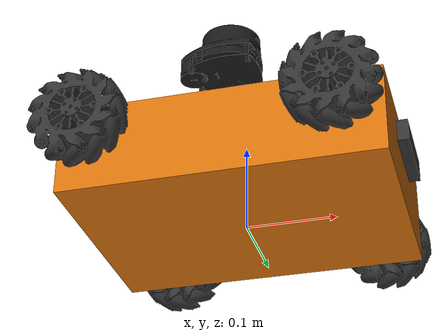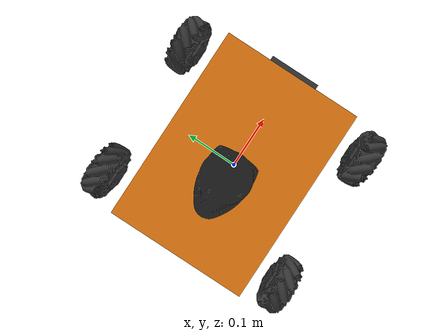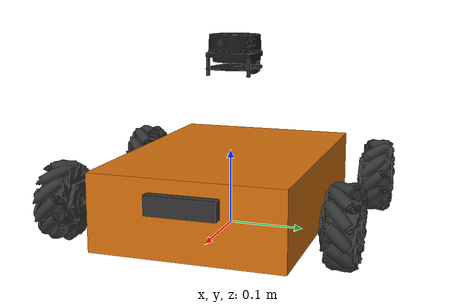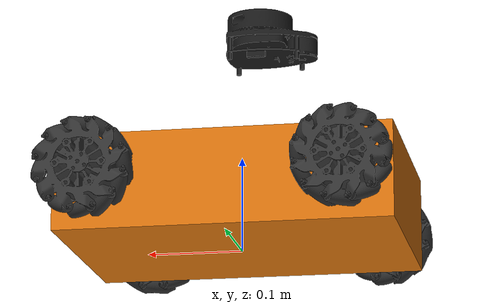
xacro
<?xml version="1.0"?>
<!-- orbibot.urdf.xacro - OrbiBot URDF robot model -->
<robot xmlns:xacro="http://www.ros.org/wiki/xacro" name="orbibot">

  <!-- Robot Parameters -->
  <!-- Native ${pi} used throughout instead of custom PI property -->

  <!-- Wheel specifications -->
  <xacro:property name="wheel_radius" value="0.05"/>           <!-- 100mm diameter = 50mm radius -->
  <xacro:property name="track_width" value="0.36"/>            <!-- Total left-right wheel separation -->
  <xacro:property name="wheelbase" value="0.26"/>              <!-- Total front-back wheel separation -->

  <!-- Base dimensions -->
  <xacro:property name="base_length" value="0.35"/>
  <xacro:property name="base_width" value="0.25"/>
  <xacro:property name="base_height" value="0.10"/>
  <xacro:property name="base_mass" value="6.0"/>

  <!-- Sensor positions -->
  <xacro:property name="lidar_height" value="0.18"/>
  <xacro:property name="camera_height" value="0.02"/>

  <!-- Inertia macros -->
  <xacro:macro name="box_inertia" params="m x y z">
    <inertia ixx="${m*(y*y+z*z)/12}" ixy="0" ixz="0"
             iyy="${m*(x*x+z*z)/12}" iyz="0"
             izz="${m*(x*x+y*y)/12}"/>
  </xacro:macro>

  <xacro:macro name="cylinder_inertia" params="m r h">
    <inertia ixx="${m*(3*r*r+h*h)/12}" ixy="0" ixz="0"
             iyy="${m*(3*r*r+h*h)/12}" iyz="0"
             izz="${m*r*r/2}"/>
  </xacro:macro>

  <!-- Base footprint -->
  <link name="base_footprint"/>

  <!-- Base joint -->
  <joint name="base_joint" type="fixed">
    <parent link="base_footprint"/>
    <child link="base_link"/>
    <origin xyz="0.0 0.0 ${wheel_radius}" rpy="0 0 0"/>
  </joint>

  <!-- Base link -->
  <link name="base_link">
    <visual>
      <origin xyz="0.0 0.0 0.0" rpy="0 0 0"/>
      <geometry>
        <box size="${base_length} ${base_width} ${base_height}"/>
      </geometry>
      <material name="chassis_material">
        <color rgba="0.85 0.45 0.05 1.0"/>
      </material>
    </visual>

    <collision>
      <origin xyz="0 0 0" rpy="0 0 0"/>
      <geometry>
        <box size="${base_length} ${base_width} ${base_height}"/>
      </geometry>
    </collision>

    <inertial>
      <origin xyz="0 0 0" rpy="0 0 0"/>
      <mass value="${base_mass}"/>
      <xacro:box_inertia m="${base_mass}" x="${base_length}" y="${base_width}" z="${base_height}"/>
    </inertial>
  </link>

  <!-- Mecanum wheel macro -->
  <xacro:macro name="mecanum_wheel" params="prefix x_pos y_pos rpy_val axis_val mesh_file">

    <!-- Wheel joint -->
    <joint name="wheel_${prefix}_joint" type="continuous">
      <parent link="base_link"/>
      <child link="wheel_${prefix}_link"/>
      <origin xyz="${x_pos} ${y_pos} 0.0" rpy="${rpy_val}"/>
      <axis xyz="${axis_val}"/>
      <dynamics damping="0.1" friction="0.1"/>
    </joint>

    <!-- Wheel link -->
    <link name="wheel_${prefix}_link">
      <visual>
        <origin xyz="0 0 0" rpy="0 0 0"/>
        <geometry>
          <mesh filename="package://orbibot_description/meshes/${mesh_file}" scale="1.0 1.0 1.0"/>
        </geometry>
        <material name="wheel_material">
          <color rgba="0.2 0.2 0.2 1.0"/>
        </material>
      </visual>

      <collision>
        <origin xyz="0 0 0" rpy="0 0 0"/>
        <geometry>
          <cylinder length="0.05" radius="${wheel_radius}"/>
        </geometry>
      </collision>

      <inertial>
        <origin xyz="0 0 0" rpy="0 0 0"/>
        <mass value="0.5"/>
        <xacro:cylinder_inertia m="0.5" r="${wheel_radius}" h="0.05"/>
      </inertial>
    </link>

  </xacro:macro>

  <!-- Wheel instantiation (ordered to match hardware M1-M4) -->
  <!-- Left wheels: standard orientation with +Z rotation axis -->
  <xacro:mecanum_wheel prefix="front_left"  x_pos="${wheelbase/2}"  y_pos="${track_width/2}"  rpy_val="${-pi/2} 0 0" axis_val="0 0 1"  mesh_file="mechanical-wheel-FrontLeft-BackRight.stl"/>
  <xacro:mecanum_wheel prefix="back_left"   x_pos="${-wheelbase/2}" y_pos="${track_width/2}"  rpy_val="${-pi/2} 0 0" axis_val="0 0 1"  mesh_file="mechanical-wheel-FrontRight-BackLeft.stl"/>
  <!-- Right wheels: flipped coordinate frame requires -Z rotation axis -->
  <xacro:mecanum_wheel prefix="front_right" x_pos="${wheelbase/2}"  y_pos="${-track_width/2}" rpy_val="${pi/2} 0 0"  axis_val="0 0 -1" mesh_file="mechanical-wheel-FrontRight-BackLeft.stl"/>
  <xacro:mecanum_wheel prefix="back_right"  x_pos="${-wheelbase/2}" y_pos="${-track_width/2}" rpy_val="${pi/2} 0 0"  axis_val="0 0 -1" mesh_file="mechanical-wheel-FrontLeft-BackRight.stl"/>

  <!-- RPLIDAR A1 -->
  <joint name="lidar_joint" type="fixed">
    <parent link="base_link"/>
    <child link="lidar_link"/>
    <origin xyz="0.0 0.0 ${lidar_height}" rpy="0 0 0"/>
  </joint>

  <link name="lidar_link">
    <visual>
      <origin xyz="-0.03 0 0" rpy="0 0 0"/>
      <geometry>
        <mesh filename="package://orbibot_description/meshes/RPLidar-A1.stl" scale="0.001 0.001 0.001"/>
      </geometry>
      <material name="lidar_material">
        <color rgba="0.1 0.1 0.1 1.0"/>
      </material>
    </visual>

    <collision>
      <origin xyz="0 0 0" rpy="0 0 0"/>
      <geometry>
        <cylinder radius="0.035" length="0.04"/>
      </geometry>
    </collision>

    <inertial>
      <origin xyz="0 0 0" rpy="0 0 0"/>
      <mass value="0.2"/>
      <xacro:cylinder_inertia m="0.2" r="0.035" h="0.04"/>
    </inertial>
  </link>

  <!-- Intel RealSense D435 -->
  <joint name="camera_joint" type="fixed">
    <parent link="base_link"/>
    <child link="camera_link"/>
    <origin xyz="${base_length/2} 0.0 ${camera_height}" rpy="0 0 0"/>
  </joint>

  <link name="camera_link">
    <visual>
      <origin xyz="0 0 0" rpy="0 0 0"/>
      <geometry>
        <box size="0.025 0.09 0.025"/>
      </geometry>
      <material name="camera_material">
        <color rgba="0.2 0.2 0.2 1.0"/>
      </material>
    </visual>

    <collision>
      <origin xyz="0 0 0" rpy="0 0 0"/>
      <geometry>
        <box size="0.025 0.09 0.025"/>
      </geometry>
    </collision>

    <inertial>
      <origin xyz="0 0 0" rpy="0 0 0"/>
      <mass value="0.072"/>
      <xacro:box_inertia m="0.072" x="0.025" y="0.09" z="0.025"/>
    </inertial>
  </link>

  <!-- Camera optical frames for RealSense -->
  <joint name="camera_color_joint" type="fixed">
    <parent link="camera_link"/>
    <child link="camera_color_frame"/>
    <origin xyz="0.0 -0.046 0.004" rpy="0 0 0"/>
  </joint>
  <link name="camera_color_frame"/>

  <joint name="camera_color_optical_joint" type="fixed">
    <parent link="camera_color_frame"/>
    <child link="camera_color_optical_frame"/>
    <origin xyz="0 0 0" rpy="${-pi/2} 0 ${-pi/2}"/>
  </joint>
  <link name="camera_color_optical_frame"/>

  <joint name="camera_depth_joint" type="fixed">
    <parent link="camera_link"/>
    <child link="camera_depth_frame"/>
    <origin xyz="0.0 -0.0175 0.004" rpy="0 0 0"/>
  </joint>
  <link name="camera_depth_frame"/>

  <joint name="camera_depth_optical_joint" type="fixed">
    <parent link="camera_depth_frame"/>
    <child link="camera_depth_optical_frame"/>
    <origin xyz="0 0 0" rpy="${-pi/2} 0 ${-pi/2}"/>
  </joint>
  <link name="camera_depth_optical_frame"/>

  <joint name="imu_joint" type="fixed">
    <parent link="base_link"/>
    <child link="imu_link"/>
    <origin xyz="0.0 0.0 0.02" rpy="0 0 1.5707963"/>
  </joint>

  <link name="imu_link">
    <visual>
      <origin xyz="0 0 0" rpy="0 0 0"/>
      <geometry>
        <box size="0.015 0.015 0.005"/>
      </geometry>
      <material name="imu_material">
        <color rgba="0.0 0.8 0.0 1.0"/>
      </material>
    </visual>

    <collision>
      <origin xyz="0 0 0" rpy="0 0 0"/>
      <geometry>
        <box size="0.015 0.015 0.005"/>
      </geometry>
    </collision>

    <inertial>
      <origin xyz="0 0 0" rpy="0 0 0"/>
      <mass value="0.005"/>
      <xacro:box_inertia m="0.005" x="0.015" y="0.015" z="0.005"/>
    </inertial>
  </link>

  <!-- Gazebo Harmonic Simulation Plugins                           -->
  <!-- These tags are ignored on the real robot (no Gazebo running) -->

  <!-- Differential drive — mecanum approximation (no lateral strafe in sim) -->
  <!-- Publishes /odom + odom→base_footprint TF, subscribes /cmd_vel        -->
  <gazebo>
    <plugin filename="gz-sim-diff-drive-system"
            name="gz::sim::systems::DiffDrive">
      <left_joint>wheel_front_left_joint</left_joint>
      <left_joint>wheel_back_left_joint</left_joint>
      <right_joint>wheel_front_right_joint</right_joint>
      <right_joint>wheel_back_right_joint</right_joint>
      <wheel_separation>0.36</wheel_separation>
      <wheel_radius>0.05</wheel_radius>
      <odom_publish_frequency>20</odom_publish_frequency>
      <max_linear_acceleration>1.0</max_linear_acceleration>
      <min_linear_acceleration>-1.0</min_linear_acceleration>
      <max_angular_acceleration>2.0</max_angular_acceleration>
      <min_angular_acceleration>-2.0</min_angular_acceleration>
      <max_linear_velocity>1.0</max_linear_velocity>
      <min_linear_velocity>-1.0</min_linear_velocity>
      <max_angular_velocity>2.0</max_angular_velocity>
      <min_angular_velocity>-2.0</min_angular_velocity>
      <topic>/cmd_vel</topic>
      <odom_topic>/odom</odom_topic>
      <tf_topic>/tf</tf_topic>
      <frame_id>odom</frame_id>
      <child_frame_id>base_footprint</child_frame_id>
    </plugin>
  </gazebo>

  <!-- Joint state publisher — publishes wheel positions for RViz -->
  <gazebo>
    <plugin filename="gz-sim-joint-state-publisher-system"
            name="gz::sim::systems::JointStatePublisher">
      <topic>/joint_states</topic>
      <joint_name>wheel_front_left_joint</joint_name>
      <joint_name>wheel_back_left_joint</joint_name>
      <joint_name>wheel_front_right_joint</joint_name>
      <joint_name>wheel_back_right_joint</joint_name>
    </plugin>
  </gazebo>

  <!-- RPLidar A1 simulation (360° ray sensor, 10 Hz, 0.15–12m) -->
  <gazebo reference="lidar_link">
    <sensor name="lidar_sensor" type="gpu_lidar">
      <always_on>1</always_on>
      <update_rate>10</update_rate>
      <topic>/scan</topic>
      <gz_frame_id>lidar_link</gz_frame_id>
      <lidar>
        <scan>
          <horizontal>
            <samples>360</samples>
            <resolution>1</resolution>
            <min_angle>-3.14159265</min_angle>
            <max_angle>3.14159265</max_angle>
          </horizontal>
        </scan>
        <range>
          <min>0.15</min>
          <max>12.0</max>
          <resolution>0.01</resolution>
        </range>
        <noise>
          <type>gaussian</type>
          <mean>0.0</mean>
          <stddev>0.01</stddev>
        </noise>
      </lidar>
      <visualize>false</visualize>
    </sensor>
  </gazebo>

  <!-- IMU sensor simulation (50 Hz with Gaussian noise) -->
  <gazebo reference="imu_link">
    <sensor name="imu_sensor" type="imu">
      <always_on>1</always_on>
      <update_rate>50</update_rate>
      <topic>/imu/data_raw</topic>
      <gz_frame_id>imu_link</gz_frame_id>
      <imu>
        <angular_velocity>
          <x><noise type="gaussian"><mean>0.0</mean><stddev>0.001</stddev></noise></x>
          <y><noise type="gaussian"><mean>0.0</mean><stddev>0.001</stddev></noise></y>
          <z><noise type="gaussian"><mean>0.0</mean><stddev>0.001</stddev></noise></z>
        </angular_velocity>
        <linear_acceleration>
          <x><noise type="gaussian"><mean>0.0</mean><stddev>0.01</stddev></noise></x>
          <y><noise type="gaussian"><mean>0.0</mean><stddev>0.01</stddev></noise></y>
          <z><noise type="gaussian"><mean>0.0</mean><stddev>0.01</stddev></noise></z>
        </linear_acceleration>
      </imu>
    </sensor>
  </gazebo>

  <!-- Chassis color for Gazebo (URDF material colors are ignored by gz-sim) -->
  <gazebo reference="base_link">
    <material>Gazebo/Orange</material>
  </gazebo>

  <!-- Wheel friction properties (improves sim driving feel) -->
  <gazebo reference="wheel_front_left_link">
    <mu1>1.0</mu1>
    <mu2>0.5</mu2>
    <kp>1e6</kp>
    <kd>1.0</kd>
  </gazebo>
  <gazebo reference="wheel_back_left_link">
    <mu1>1.0</mu1>
    <mu2>0.5</mu2>
    <kp>1e6</kp>
    <kd>1.0</kd>
  </gazebo>
  <gazebo reference="wheel_front_right_link">
    <mu1>1.0</mu1>
    <mu2>0.5</mu2>
    <kp>1e6</kp>
    <kd>1.0</kd>
  </gazebo>
  <gazebo reference="wheel_back_right_link">
    <mu1>1.0</mu1>
    <mu2>0.5</mu2>
    <kp>1e6</kp>
    <kd>1.0</kd>
  </gazebo>

</robot>
